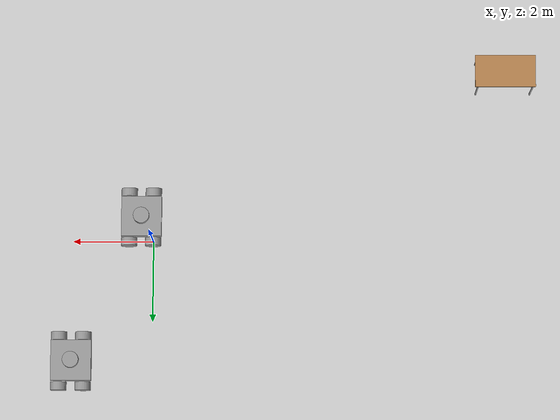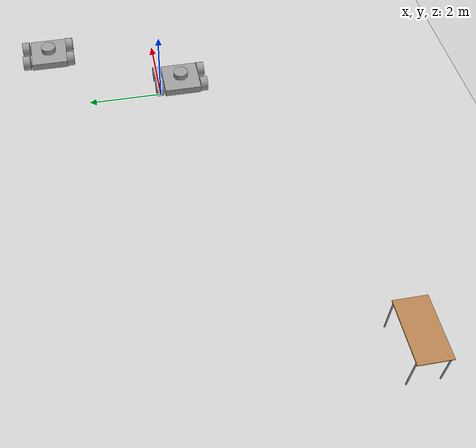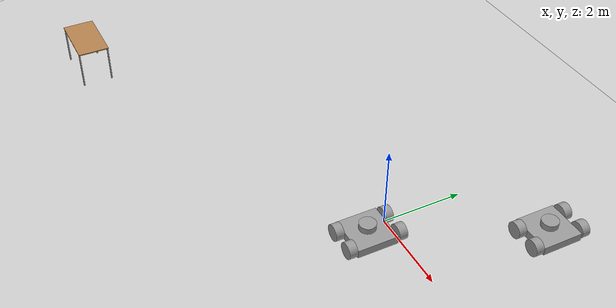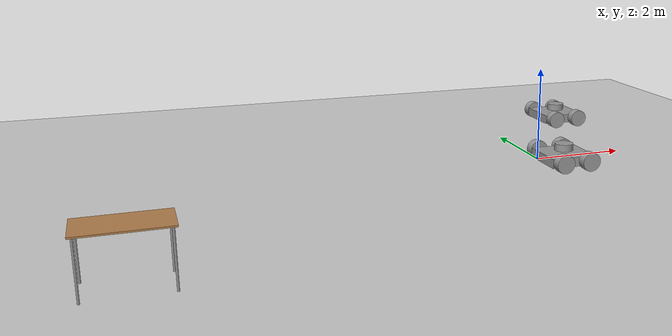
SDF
<sdf version="1.6">
 <world name="default">
  <model name="ground_plane">
   <static>1</static>
   <link name="link">
    <collision name="collision">
     <geometry><plane><normal>0 0 1</normal><size>100 100</size></plane></geometry>
     <surface><friction><ode><mu>100</mu><mu2>50</mu2></ode></friction></surface>
    </collision>
    <visual name="visual">
     <cast_shadows>0</cast_shadows>
     <geometry><plane><normal>0 0 1</normal><size>100 100</size></plane></geometry>
     <material>
      <script><uri>file://media/materials/scripts/gazebo.material</uri><name>Gazebo/Grey</name></script>
     </material>
    </visual>
   </link>
  </model>
  <model name="table">
   <static>1</static>
   <link name="link">
    <collision name="surface">
     <pose>0 0 1 0 -0 0</pose>
     <geometry><box><size>1.5 0.8 0.03</size></box></geometry>
     <surface><friction><ode><mu>0.6</mu><mu2>0.6</mu2></ode></friction></surface>
    </collision>
    <visual name="visual1">
     <pose>0 0 1 0 -0 0</pose>
     <geometry><box><size>1.5 0.8 0.03</size></box></geometry>
     <material>
      <script><uri>file://media/materials/scripts/gazebo.material</uri><name>Gazebo/Wood</name></script>
     </material>
    </visual>
    <collision name="front_left_leg">
     <pose>0.68 0.38 0.5 0 -0 0</pose>
     <geometry><cylinder><radius>0.02</radius><length>1</length></cylinder></geometry>
    </collision>
    <visual name="front_left_leg">
     <pose>0.68 0.38 0.5 0 -0 0</pose>
     <geometry><cylinder><radius>0.02</radius><length>1</length></cylinder></geometry>
     <material>
      <script><uri>file://media/materials/scripts/gazebo.material</uri><name>Gazebo/Grey</name></script>
     </material>
    </visual>
    <collision name="front_right_leg">
     <pose>0.68 -0.38 0.5 0 -0 0</pose>
     <geometry><cylinder><radius>0.02</radius><length>1</length></cylinder></geometry>
    </collision>
    <visual name="front_right_leg">
     <pose>0.68 -0.38 0.5 0 -0 0</pose>
     <geometry><cylinder><radius>0.02</radius><length>1</length></cylinder></geometry>
     <material>
      <script><uri>file://media/materials/scripts/gazebo.material</uri><name>Gazebo/Grey</name></script>
     </material>
    </visual>
    <collision name="back_right_leg">
     <pose>-0.68 -0.38 0.5 0 -0 0</pose>
     <geometry><cylinder><radius>0.02</radius><length>1</length></cylinder></geometry>
    </collision>
    <visual name="back_right_leg">
     <pose>-0.68 -0.38 0.5 0 -0 0</pose>
     <geometry><cylinder><radius>0.02</radius><length>1</length></cylinder></geometry>
     <material>
      <script><uri>file://media/materials/scripts/gazebo.material</uri><name>Gazebo/Grey</name></script>
     </material>
    </visual>
    <collision name="back_left_leg">
     <pose>-0.68 0.38 0.5 0 -0 0</pose>
     <geometry><cylinder><radius>0.02</radius><length>1</length></cylinder></geometry>
    </collision>
    <visual name="back_left_leg">
     <pose>-0.68 0.38 0.5 0 -0 0</pose>
     <geometry><cylinder><radius>0.02</radius><length>1</length></cylinder></geometry>
     <material>
      <script><uri>file://media/materials/scripts/gazebo.material</uri><name>Gazebo/Grey</name></script>
     </material>
    </visual>
   </link>
   <pose>-8.74208 -4.16902 0 0 -0 0</pose>
  </model>
  <model name="Recon">
   <link name="link_0">
    <pose>0 -0.013386 -0.049161 0 -0 0</pose>
    <inertial>
     <mass>1</mass>
     <inertia>
      <ixx>0.166667</ixx>
      <ixy>0</ixy>
      <ixz>0</ixz>
      <iyy>0.166667</iyy>
      <iyz>0</iyz>
      <izz>0.166667</izz>
     </inertia>
    </inertial>
    <visual name="visual">
     <geometry><box><size>1 1 0.2</size></box></geometry>
     <material>
      <lighting>1</lighting>
      <script><uri>file://media/materials/scripts/gazebo.material</uri><name>Gazebo/Grey</name></script>
      <ambient>0.3 0.3 0.3 1</ambient>
      <diffuse>0.7 0.7 0.7 1</diffuse>
      <specular>0.01 0.01 0.01 1</specular>
      <emissive>0 0 0 1</emissive>
      <shader type="vertex"><normal_map>__default__</normal_map></shader>
     </material>
    </visual>
    <collision name="collision">
     <geometry><box><size>1 1 0.2</size></box></geometry>
     <surface>
      <friction>
       <ode><mu>1</mu><mu2>1</mu2><fdir1>0 0 0</fdir1><slip1>0</slip1><slip2>0</slip2></ode>
       <torsional>
        <coefficient>1</coefficient>
        <patch_radius>0</patch_radius>
        <surface_radius>0</surface_radius>
        <use_patch_radius>1</use_patch_radius>
        <ode><slip>0</slip></ode>
       </torsional>
      </friction>
      <bounce><restitution_coefficient>0</restitution_coefficient><threshold>1e+06</threshold></bounce>
      <contact>
       <collide_without_contact>0</collide_without_contact>
       <collide_without_contact_bitmask>1</collide_without_contact_bitmask>
       <collide_bitmask>1</collide_bitmask>
       <ode>
        <soft_cfm>0</soft_cfm>
        <soft_erp>0.2</soft_erp>
        <kp>1e+13</kp>
        <kd>1</kd>
        <max_vel>0.01</max_vel>
        <min_depth>0</min_depth>
       </ode>
       <bullet>
        <split_impulse>1</split_impulse>
        <split_impulse_penetration_threshold>-0.01</split_impulse_penetration_threshold>
        <soft_cfm>0</soft_cfm>
        <soft_erp>0.2</soft_erp>
        <kp>1e+13</kp>
        <kd>1</kd>
       </bullet>
      </contact>
     </surface>
    </collision>
   </link>
   <link name="link_1">
    <pose>-0.3 0.626773 -0.029177 1.57 -0 0</pose>
    <inertial>
     <mass>1</mass>
     <inertia><ixx>0.145833</ixx><ixy>0</ixy><ixz>0</ixz><iyy>0.145833</iyy><iyz>0</iyz><izz>0.125</izz></inertia>
    </inertial>
    <visual name="visual">
     <geometry><cylinder><radius>0.2</radius><length>0.2</length></cylinder></geometry>
     <material>
      <lighting>1</lighting>
      <script><uri>file://media/materials/scripts/gazebo.material</uri><name>Gazebo/Grey</name></script>
      <ambient>0.3 0.3 0.3 1</ambient>
      <diffuse>0.7 0.7 0.7 1</diffuse>
      <specular>0.01 0.01 0.01 1</specular>
      <emissive>0 0 0 1</emissive>
      <shader type="vertex"><normal_map>__default__</normal_map></shader>
     </material>
    </visual>
    <collision name="collision">
     <geometry><cylinder><radius>0.2</radius><length>0.2</length></cylinder></geometry>
     <surface>
      <friction>
       <ode><mu>1</mu><mu2>1</mu2><fdir1>0 0 0</fdir1><slip1>0</slip1><slip2>0</slip2></ode>
       <torsional>
        <coefficient>1</coefficient>
        <patch_radius>0</patch_radius>
        <surface_radius>0</surface_radius>
        <use_patch_radius>1</use_patch_radius>
        <ode><slip>0</slip></ode>
       </torsional>
      </friction>
      <bounce><restitution_coefficient>0</restitution_coefficient><threshold>1e+06</threshold></bounce>
      <contact>
       <collide_without_contact>0</collide_without_contact>
       <collide_without_contact_bitmask>1</collide_without_contact_bitmask>
       <collide_bitmask>1</collide_bitmask>
       <ode>
        <soft_cfm>0</soft_cfm>
        <soft_erp>0.2</soft_erp>
        <kp>1e+13</kp>
        <kd>1</kd>
        <max_vel>0.01</max_vel>
        <min_depth>0</min_depth>
       </ode>
       <bullet>
        <split_impulse>1</split_impulse>
        <split_impulse_penetration_threshold>-0.01</split_impulse_penetration_threshold>
        <soft_cfm>0</soft_cfm>
        <soft_erp>0.2</soft_erp>
        <kp>1e+13</kp>
        <kd>1</kd>
       </bullet>
      </contact>
     </surface>
    </collision>
   </link>
   <link name="link_2">
    <pose>0.3 0.626773 -0.029177 1.57 -0 0</pose>
    <inertial>
     <mass>1</mass>
     <inertia><ixx>0.145833</ixx><ixy>0</ixy><ixz>0</ixz><iyy>0.145833</iyy><iyz>0</iyz><izz>0.125</izz></inertia>
    </inertial>
    <visual name="visual">
     <geometry><cylinder><radius>0.2</radius><length>0.2</length></cylinder></geometry>
     <material>
      <lighting>1</lighting>
      <script><uri>file://media/materials/scripts/gazebo.material</uri><name>Gazebo/Grey</name></script>
      <ambient>0.3 0.3 0.3 1</ambient>
      <diffuse>0.7 0.7 0.7 1</diffuse>
      <specular>0.01 0.01 0.01 1</specular>
      <emissive>0 0 0 1</emissive>
      <shader type="vertex"><normal_map>__default__</normal_map></shader>
     </material>
    </visual>
    <collision name="collision">
     <geometry><cylinder><radius>0.2</radius><length>0.2</length></cylinder></geometry>
     <surface>
      <friction>
       <ode><mu>1</mu><mu2>1</mu2><fdir1>0 0 0</fdir1><slip1>0</slip1><slip2>0</slip2></ode>
       <torsional>
        <coefficient>1</coefficient>
        <patch_radius>0</patch_radius>
        <surface_radius>0</surface_radius>
        <use_patch_radius>1</use_patch_radius>
        <ode><slip>0</slip></ode>
       </torsional>
      </friction>
      <bounce><restitution_coefficient>0</restitution_coefficient><threshold>1e+06</threshold></bounce>
      <contact>
       <collide_without_contact>0</collide_without_contact>
       <collide_without_contact_bitmask>1</collide_without_contact_bitmask>
       <collide_bitmask>1</collide_bitmask>
       <ode>
        <soft_cfm>0</soft_cfm>
        <soft_erp>0.2</soft_erp>
        <kp>1e+13</kp>
        <kd>1</kd>
        <max_vel>0.01</max_vel>
        <min_depth>0</min_depth>
       </ode>
       <bullet>
        <split_impulse>1</split_impulse>
        <split_impulse_penetration_threshold>-0.01</split_impulse_penetration_threshold>
        <soft_cfm>0</soft_cfm>
        <soft_erp>0.2</soft_erp>
        <kp>1e+13</kp>
        <kd>1</kd>
       </bullet>
      </contact>
     </surface>
    </collision>
   </link>
   <link name="link_3">
    <pose>-0.3 -0.613387 -0.029161 1.5708 -0 0</pose>
    <inertial>
     <mass>1</mass>
     <inertia><ixx>0.145833</ixx><ixy>0</ixy><ixz>0</ixz><iyy>0.145833</iyy><iyz>0</iyz><izz>0.125</izz></inertia>
     <pose>-0.02 0 0 0 -0 0</pose>
    </inertial>
    <visual name="visual">
     <geometry><cylinder><radius>0.2</radius><length>0.2</length></cylinder></geometry>
     <material>
      <lighting>1</lighting>
      <script><uri>file://media/materials/scripts/gazebo.material</uri><name>Gazebo/Grey</name></script>
      <ambient>0.3 0.3 0.3 1</ambient>
      <diffuse>0.7 0.7 0.7 1</diffuse>
      <specular>0.01 0.01 0.01 1</specular>
      <emissive>0 0 0 1</emissive>
      <shader type="vertex"><normal_map>__default__</normal_map></shader>
     </material>
    </visual>
    <collision name="collision">
     <geometry><cylinder><radius>0.2</radius><length>0.2</length></cylinder></geometry>
     <surface>
      <friction>
       <ode><mu>1</mu><mu2>1</mu2><fdir1>0 0 0</fdir1><slip1>0</slip1><slip2>0</slip2></ode>
       <torsional>
        <coefficient>1</coefficient>
        <patch_radius>0</patch_radius>
        <surface_radius>0</surface_radius>
        <use_patch_radius>1</use_patch_radius>
        <ode><slip>0</slip></ode>
       </torsional>
      </friction>
      <bounce><restitution_coefficient>0</restitution_coefficient><threshold>1e+06</threshold></bounce>
      <contact>
       <collide_without_contact>0</collide_without_contact>
       <collide_without_contact_bitmask>1</collide_without_contact_bitmask>
       <collide_bitmask>1</collide_bitmask>
       <ode>
        <soft_cfm>0</soft_cfm>
        <soft_erp>0.2</soft_erp>
        <kp>1e+13</kp>
        <kd>1</kd>
        <max_vel>0.01</max_vel>
        <min_depth>0</min_depth>
       </ode>
       <bullet>
        <split_impulse>1</split_impulse>
        <split_impulse_penetration_threshold>-0.01</split_impulse_penetration_threshold>
        <soft_cfm>0</soft_cfm>
        <soft_erp>0.2</soft_erp>
        <kp>1e+13</kp>
        <kd>1</kd>
       </bullet>
      </contact>
     </surface>
    </collision>
   </link>
   <link name="link_4">
    <pose>0.3 -0.613387 -0.029161 1.5708 -0 0</pose>
    <inertial>
     <mass>1</mass>
     <inertia><ixx>0.145833</ixx><ixy>0</ixy><ixz>0</ixz><iyy>0.145833</iyy><iyz>0</iyz><izz>0.125</izz></inertia>
    </inertial>
    <visual name="visual">
     <geometry><cylinder><radius>0.2</radius><length>0.2</length></cylinder></geometry>
     <material>
      <lighting>1</lighting>
      <script><uri>file://media/materials/scripts/gazebo.material</uri><name>Gazebo/Grey</name></script>
      <ambient>0.3 0.3 0.3 1</ambient>
      <diffuse>0.7 0.7 0.7 1</diffuse>
      <specular>0.01 0.01 0.01 1</specular>
      <emissive>0 0 0 1</emissive>
      <shader type="vertex"><normal_map>__default__</normal_map></shader>
     </material>
    </visual>
    <collision name="collision">
     <geometry><cylinder><radius>0.2</radius><length>0.2</length></cylinder></geometry>
     <surface>
      <friction>
       <ode><mu>1</mu><mu2>1</mu2><fdir1>0 0 0</fdir1><slip1>0</slip1><slip2>0</slip2></ode>
       <torsional>
        <coefficient>1</coefficient>
        <patch_radius>0</patch_radius>
        <surface_radius>0</surface_radius>
        <use_patch_radius>1</use_patch_radius>
        <ode><slip>0</slip></ode>
       </torsional>
      </friction>
      <bounce><restitution_coefficient>0</restitution_coefficient><threshold>1e+06</threshold></bounce>
      <contact>
       <collide_without_contact>0</collide_without_contact>
       <collide_without_contact_bitmask>1</collide_without_contact_bitmask>
       <collide_bitmask>1</collide_bitmask>
       <ode>
        <soft_cfm>0</soft_cfm>
        <soft_erp>0.2</soft_erp>
        <kp>1e+13</kp>
        <kd>1</kd>
        <max_vel>0.01</max_vel>
        <min_depth>0</min_depth>
       </ode>
       <bullet>
        <split_impulse>1</split_impulse>
        <split_impulse_penetration_threshold>-0.01</split_impulse_penetration_threshold>
        <soft_cfm>0</soft_cfm>
        <soft_erp>0.2</soft_erp>
        <kp>1e+13</kp>
        <kd>1</kd>
       </bullet>
      </contact>
     </surface>
    </collision>
   </link>
   <link name="link_5">
    <pose>0 -0.013386 0.165839 0 -0 0</pose>
    <inertial>
     <mass>1</mass>
     <inertia><ixx>0.145833</ixx><ixy>0</ixy><ixz>0</ixz><iyy>0.145833</iyy><iyz>0</iyz><izz>0.125</izz></inertia>
    </inertial>
    <visual name="visual">
     <geometry><cylinder><radius>0.2</radius><length>0.15</length></cylinder></geometry>
     <material>
      <lighting>1</lighting>
      <script><uri>file://media/materials/scripts/gazebo.material</uri><name>Gazebo/Grey</name></script>
      <ambient>0.3 0.3 0.3 1</ambient>
      <diffuse>0.7 0.7 0.7 1</diffuse>
      <specular>0.01 0.01 0.01 1</specular>
      <emissive>0 0 0 1</emissive>
      <shader type="vertex"><normal_map>__default__</normal_map></shader>
     </material>
    </visual>
    <collision name="collision">
     <geometry><cylinder><radius>0.2</radius><length>0.15</length></cylinder></geometry>
     <surface>
      <friction>
       <ode><mu>1</mu><mu2>1</mu2><fdir1>0 0 0</fdir1><slip1>0</slip1><slip2>0</slip2></ode>
       <torsional>
        <coefficient>1</coefficient>
        <patch_radius>0</patch_radius>
        <surface_radius>0</surface_radius>
        <use_patch_radius>1</use_patch_radius>
        <ode><slip>0</slip></ode>
       </torsional>
      </friction>
      <bounce><restitution_coefficient>0</restitution_coefficient><threshold>1e+06</threshold></bounce>
      <contact>
       <collide_without_contact>0</collide_without_contact>
       <collide_without_contact_bitmask>1</collide_without_contact_bitmask>
       <collide_bitmask>1</collide_bitmask>
       <ode>
        <soft_cfm>0</soft_cfm>
        <soft_erp>0.2</soft_erp>
        <kp>1e+13</kp>
        <kd>1</kd>
        <max_vel>0.01</max_vel>
        <min_depth>0</min_depth>
       </ode>
       <bullet>
        <split_impulse>1</split_impulse>
        <split_impulse_penetration_threshold>-0.01</split_impulse_penetration_threshold>
        <soft_cfm>0</soft_cfm>
        <soft_erp>0.2</soft_erp>
        <kp>1e+13</kp>
        <kd>1</kd>
       </bullet>
      </contact>
     </surface>
    </collision>
   </link>
   <joint name="link_0_JOINT_2" type="revolute">
    <parent>link_0</parent>
    <child>link_4</child>
    <axis>
     <xyz>1 0 0</xyz>
     <use_parent_model_frame>0</use_parent_model_frame>
     <limit>
      <lower>-1.79769e+308</lower>
      <upper>1.79769e+308</upper>
      <effort>-1</effort>
      <velocity>-1</velocity>
     </limit>
     <dynamics>
      <spring_reference>0</spring_reference>
      <spring_stiffness>0</spring_stiffness>
      <damping>0</damping>
     </dynamics>
    </axis>
    <physics>
     <ode><limit><cfm>0</cfm><erp>0.2</erp></limit><suspension><cfm>0</cfm><erp>0.2</erp></suspension></ode>
    </physics>
   </joint>
   <joint name="link_0_JOINT_3" type="revolute">
    <parent>link_0</parent>
    <child>link_3</child>
    <axis>
     <xyz>1 0 0</xyz>
     <use_parent_model_frame>0</use_parent_model_frame>
     <limit>
      <lower>-1.79769e+308</lower>
      <upper>1.79769e+308</upper>
      <effort>-1</effort>
      <velocity>-1</velocity>
     </limit>
     <dynamics>
      <spring_reference>0</spring_reference>
      <spring_stiffness>0</spring_stiffness>
      <damping>0</damping>
     </dynamics>
    </axis>
    <physics>
     <ode><limit><cfm>0</cfm><erp>0.2</erp></limit><suspension><cfm>0</cfm><erp>0.2</erp></suspension></ode>
    </physics>
   </joint>
   <joint name="link_0_JOINT_4" type="revolute">
    <parent>link_0</parent>
    <child>link_1</child>
    <axis>
     <xyz>1 0 0</xyz>
     <use_parent_model_frame>0</use_parent_model_frame>
     <limit>
      <lower>-1.79769e+308</lower>
      <upper>1.79769e+308</upper>
      <effort>-1</effort>
      <velocity>-1</velocity>
     </limit>
     <dynamics>
      <spring_reference>0</spring_reference>
      <spring_stiffness>0</spring_stiffness>
      <damping>0</damping>
     </dynamics>
    </axis>
    <physics>
     <ode><limit><cfm>0</cfm><erp>0.2</erp></limit><suspension><cfm>0</cfm><erp>0.2</erp></suspension></ode>
    </physics>
   </joint>
   <joint name="link_0_JOINT_5" type="revolute">
    <parent>link_0</parent>
    <child>link_2</child>
    <axis>
     <xyz>1 0 0</xyz>
     <use_parent_model_frame>0</use_parent_model_frame>
     <limit>
      <lower>-1.79769e+308</lower>
      <upper>1.79769e+308</upper>
      <effort>-1</effort>
      <velocity>-1</velocity>
     </limit>
     <dynamics>
      <spring_reference>0</spring_reference>
      <spring_stiffness>0</spring_stiffness>
      <damping>0</damping>
     </dynamics>
    </axis>
    <physics>
     <ode><limit><cfm>0</cfm><erp>0.2</erp></limit><suspension><cfm>0</cfm><erp>0.2</erp></suspension></ode>
    </physics>
   </joint>
   <joint name="link_0_JOINT_6" type="revolute">
    <parent>link_0</parent>
    <child>link_5</child>
    <axis>
     <xyz>1 0 0</xyz>
     <use_parent_model_frame>0</use_parent_model_frame>
     <limit>
      <lower>-1.79769e+308</lower>
      <upper>1.79769e+308</upper>
      <effort>-1</effort>
      <velocity>-1</velocity>
     </limit>
     <dynamics>
      <spring_reference>0</spring_reference>
      <spring_stiffness>0</spring_stiffness>
      <damping>0</damping>
     </dynamics>
    </axis>
    <physics>
     <ode><limit><cfm>0</cfm><erp>0.2</erp></limit><suspension><cfm>0</cfm><erp>0.2</erp></suspension></ode>
    </physics>
   </joint>
   <static>0</static>
   <pose>0.3 -0.6 0.25 0 -0 0</pose>
  </model>
  <model name="Recon_0">
   <link name="link_0">
    <pose>0 -0.013386 -0.049161 0 -0 0</pose>
    <inertial>
     <mass>1</mass>
     <inertia>
      <ixx>0.166667</ixx>
      <ixy>0</ixy>
      <ixz>0</ixz>
      <iyy>0.166667</iyy>
      <iyz>0</iyz>
      <izz>0.166667</izz>
     </inertia>
    </inertial>
    <visual name="visual">
     <geometry><box><size>1 1 0.2</size></box></geometry>
     <material>
      <lighting>1</lighting>
      <script><uri>file://media/materials/scripts/gazebo.material</uri><name>Gazebo/Grey</name></script>
      <ambient>0.3 0.3 0.3 1</ambient>
      <diffuse>0.7 0.7 0.7 1</diffuse>
      <specular>0.01 0.01 0.01 1</specular>
      <emissive>0 0 0 1</emissive>
      <shader type="vertex"><normal_map>__default__</normal_map></shader>
     </material>
    </visual>
    <collision name="collision">
     <geometry><box><size>1 1 0.2</size></box></geometry>
     <surface>
      <friction>
       <ode><mu>1</mu><mu2>1</mu2><fdir1>0 0 0</fdir1><slip1>0</slip1><slip2>0</slip2></ode>
       <torsional>
        <coefficient>1</coefficient>
        <patch_radius>0</patch_radius>
        <surface_radius>0</surface_radius>
        <use_patch_radius>1</use_patch_radius>
        <ode><slip>0</slip></ode>
       </torsional>
      </friction>
      <bounce><restitution_coefficient>0</restitution_coefficient><threshold>1e+06</threshold></bounce>
      <contact>
       <collide_without_contact>0</collide_without_contact>
       <collide_without_contact_bitmask>1</collide_without_contact_bitmask>
       <collide_bitmask>1</collide_bitmask>
       <ode>
        <soft_cfm>0</soft_cfm>
        <soft_erp>0.2</soft_erp>
        <kp>1e+13</kp>
        <kd>1</kd>
        <max_vel>0.01</max_vel>
        <min_depth>0</min_depth>
       </ode>
       <bullet>
        <split_impulse>1</split_impulse>
        <split_impulse_penetration_threshold>-0.01</split_impulse_penetration_threshold>
        <soft_cfm>0</soft_cfm>
        <soft_erp>0.2</soft_erp>
        <kp>1e+13</kp>
        <kd>1</kd>
       </bullet>
      </contact>
     </surface>
    </collision>
   </link>
   <link name="link_1">
    <pose>-0.3 0.626773 -0.029177 1.57 -0 0</pose>
    <inertial>
     <mass>1</mass>
     <inertia><ixx>0.145833</ixx><ixy>0</ixy><ixz>0</ixz><iyy>0.145833</iyy><iyz>0</iyz><izz>0.125</izz></inertia>
    </inertial>
    <visual name="visual">
     <geometry><cylinder><radius>0.2</radius><length>0.2</length></cylinder></geometry>
     <material>
      <lighting>1</lighting>
      <script><uri>file://media/materials/scripts/gazebo.material</uri><name>Gazebo/Grey</name></script>
      <ambient>0.3 0.3 0.3 1</ambient>
      <diffuse>0.7 0.7 0.7 1</diffuse>
      <specular>0.01 0.01 0.01 1</specular>
      <emissive>0 0 0 1</emissive>
      <shader type="vertex"><normal_map>__default__</normal_map></shader>
     </material>
    </visual>
    <collision name="collision">
     <geometry><cylinder><radius>0.2</radius><length>0.2</length></cylinder></geometry>
     <surface>
      <friction>
       <ode><mu>1</mu><mu2>1</mu2><fdir1>0 0 0</fdir1><slip1>0</slip1><slip2>0</slip2></ode>
       <torsional>
        <coefficient>1</coefficient>
        <patch_radius>0</patch_radius>
        <surface_radius>0</surface_radius>
        <use_patch_radius>1</use_patch_radius>
        <ode><slip>0</slip></ode>
       </torsional>
      </friction>
      <bounce><restitution_coefficient>0</restitution_coefficient><threshold>1e+06</threshold></bounce>
      <contact>
       <collide_without_contact>0</collide_without_contact>
       <collide_without_contact_bitmask>1</collide_without_contact_bitmask>
       <collide_bitmask>1</collide_bitmask>
       <ode>
        <soft_cfm>0</soft_cfm>
        <soft_erp>0.2</soft_erp>
        <kp>1e+13</kp>
        <kd>1</kd>
        <max_vel>0.01</max_vel>
        <min_depth>0</min_depth>
       </ode>
       <bullet>
        <split_impulse>1</split_impulse>
        <split_impulse_penetration_threshold>-0.01</split_impulse_penetration_threshold>
        <soft_cfm>0</soft_cfm>
        <soft_erp>0.2</soft_erp>
        <kp>1e+13</kp>
        <kd>1</kd>
       </bullet>
      </contact>
     </surface>
    </collision>
   </link>
   <link name="link_2">
    <pose>0.3 0.626773 -0.029177 1.57 -0 0</pose>
    <inertial>
     <mass>1</mass>
     <inertia><ixx>0.145833</ixx><ixy>0</ixy><ixz>0</ixz><iyy>0.145833</iyy><iyz>0</iyz><izz>0.125</izz></inertia>
    </inertial>
    <visual name="visual">
     <geometry><cylinder><radius>0.2</radius><length>0.2</length></cylinder></geometry>
     <material>
      <lighting>1</lighting>
      <script><uri>file://media/materials/scripts/gazebo.material</uri><name>Gazebo/Grey</name></script>
      <ambient>0.3 0.3 0.3 1</ambient>
      <diffuse>0.7 0.7 0.7 1</diffuse>
      <specular>0.01 0.01 0.01 1</specular>
      <emissive>0 0 0 1</emissive>
      <shader type="vertex"><normal_map>__default__</normal_map></shader>
     </material>
    </visual>
    <collision name="collision">
     <geometry><cylinder><radius>0.2</radius><length>0.2</length></cylinder></geometry>
     <surface>
      <friction>
       <ode><mu>1</mu><mu2>1</mu2><fdir1>0 0 0</fdir1><slip1>0</slip1><slip2>0</slip2></ode>
       <torsional>
        <coefficient>1</coefficient>
        <patch_radius>0</patch_radius>
        <surface_radius>0</surface_radius>
        <use_patch_radius>1</use_patch_radius>
        <ode><slip>0</slip></ode>
       </torsional>
      </friction>
      <bounce><restitution_coefficient>0</restitution_coefficient><threshold>1e+06</threshold></bounce>
      <contact>
       <collide_without_contact>0</collide_without_contact>
       <collide_without_contact_bitmask>1</collide_without_contact_bitmask>
       <collide_bitmask>1</collide_bitmask>
       <ode>
        <soft_cfm>0</soft_cfm>
        <soft_erp>0.2</soft_erp>
        <kp>1e+13</kp>
        <kd>1</kd>
        <max_vel>0.01</max_vel>
        <min_depth>0</min_depth>
       </ode>
       <bullet>
        <split_impulse>1</split_impulse>
        <split_impulse_penetration_threshold>-0.01</split_impulse_penetration_threshold>
        <soft_cfm>0</soft_cfm>
        <soft_erp>0.2</soft_erp>
        <kp>1e+13</kp>
        <kd>1</kd>
       </bullet>
      </contact>
     </surface>
    </collision>
   </link>
   <link name="link_3">
    <pose>-0.3 -0.613387 -0.029161 1.5708 -0 0</pose>
    <inertial>
     <mass>1</mass>
     <inertia><ixx>0.145833</ixx><ixy>0</ixy><ixz>0</ixz><iyy>0.145833</iyy><iyz>0</iyz><izz>0.125</izz></inertia>
     <pose>-0.02 0 0 0 -0 0</pose>
    </inertial>
    <visual name="visual">
     <geometry><cylinder><radius>0.2</radius><length>0.2</length></cylinder></geometry>
     <material>
      <lighting>1</lighting>
      <script><uri>file://media/materials/scripts/gazebo.material</uri><name>Gazebo/Grey</name></script>
      <ambient>0.3 0.3 0.3 1</ambient>
      <diffuse>0.7 0.7 0.7 1</diffuse>
      <specular>0.01 0.01 0.01 1</specular>
      <emissive>0 0 0 1</emissive>
      <shader type="vertex"><normal_map>__default__</normal_map></shader>
     </material>
    </visual>
    <collision name="collision">
     <geometry><cylinder><radius>0.2</radius><length>0.2</length></cylinder></geometry>
     <surface>
      <friction>
       <ode><mu>1</mu><mu2>1</mu2><fdir1>0 0 0</fdir1><slip1>0</slip1><slip2>0</slip2></ode>
       <torsional>
        <coefficient>1</coefficient>
        <patch_radius>0</patch_radius>
        <surface_radius>0</surface_radius>
        <use_patch_radius>1</use_patch_radius>
        <ode><slip>0</slip></ode>
       </torsional>
      </friction>
      <bounce><restitution_coefficient>0</restitution_coefficient><threshold>1e+06</threshold></bounce>
      <contact>
       <collide_without_contact>0</collide_without_contact>
       <collide_without_contact_bitmask>1</collide_without_contact_bitmask>
       <collide_bitmask>1</collide_bitmask>
       <ode>
        <soft_cfm>0</soft_cfm>
        <soft_erp>0.2</soft_erp>
        <kp>1e+13</kp>
        <kd>1</kd>
        <max_vel>0.01</max_vel>
        <min_depth>0</min_depth>
       </ode>
       <bullet>
        <split_impulse>1</split_impulse>
        <split_impulse_penetration_threshold>-0.01</split_impulse_penetration_threshold>
        <soft_cfm>0</soft_cfm>
        <soft_erp>0.2</soft_erp>
        <kp>1e+13</kp>
        <kd>1</kd>
       </bullet>
      </contact>
     </surface>
    </collision>
   </link>
   <link name="link_4">
    <pose>0.3 -0.613387 -0.029161 1.5708 -0 0</pose>
    <inertial>
     <mass>1</mass>
     <inertia><ixx>0.145833</ixx><ixy>0</ixy><ixz>0</ixz><iyy>0.145833</iyy><iyz>0</iyz><izz>0.125</izz></inertia>
    </inertial>
    <visual name="visual">
     <geometry><cylinder><radius>0.2</radius><length>0.2</length></cylinder></geometry>
     <material>
      <lighting>1</lighting>
      <script><uri>file://media/materials/scripts/gazebo.material</uri><name>Gazebo/Grey</name></script>
      <ambient>0.3 0.3 0.3 1</ambient>
      <diffuse>0.7 0.7 0.7 1</diffuse>
      <specular>0.01 0.01 0.01 1</specular>
      <emissive>0 0 0 1</emissive>
      <shader type="vertex"><normal_map>__default__</normal_map></shader>
     </material>
    </visual>
    <collision name="collision">
     <geometry><cylinder><radius>0.2</radius><length>0.2</length></cylinder></geometry>
     <surface>
      <friction>
       <ode><mu>1</mu><mu2>1</mu2><fdir1>0 0 0</fdir1><slip1>0</slip1><slip2>0</slip2></ode>
       <torsional>
        <coefficient>1</coefficient>
        <patch_radius>0</patch_radius>
        <surface_radius>0</surface_radius>
        <use_patch_radius>1</use_patch_radius>
        <ode><slip>0</slip></ode>
       </torsional>
      </friction>
      <bounce><restitution_coefficient>0</restitution_coefficient><threshold>1e+06</threshold></bounce>
      <contact>
       <collide_without_contact>0</collide_without_contact>
       <collide_without_contact_bitmask>1</collide_without_contact_bitmask>
       <collide_bitmask>1</collide_bitmask>
       <ode>
        <soft_cfm>0</soft_cfm>
        <soft_erp>0.2</soft_erp>
        <kp>1e+13</kp>
        <kd>1</kd>
        <max_vel>0.01</max_vel>
        <min_depth>0</min_depth>
       </ode>
       <bullet>
        <split_impulse>1</split_impulse>
        <split_impulse_penetration_threshold>-0.01</split_impulse_penetration_threshold>
        <soft_cfm>0</soft_cfm>
        <soft_erp>0.2</soft_erp>
        <kp>1e+13</kp>
        <kd>1</kd>
       </bullet>
      </contact>
     </surface>
    </collision>
   </link>
   <link name="link_5">
    <pose>0 -0.013386 0.165839 0 -0 0</pose>
    <inertial>
     <mass>1</mass>
     <inertia><ixx>0.145833</ixx><ixy>0</ixy><ixz>0</ixz><iyy>0.145833</iyy><iyz>0</iyz><izz>0.125</izz></inertia>
    </inertial>
    <visual name="visual">
     <geometry><cylinder><radius>0.2</radius><length>0.15</length></cylinder></geometry>
     <material>
      <lighting>1</lighting>
      <script><uri>file://media/materials/scripts/gazebo.material</uri><name>Gazebo/Grey</name></script>
      <ambient>0.3 0.3 0.3 1</ambient>
      <diffuse>0.7 0.7 0.7 1</diffuse>
      <specular>0.01 0.01 0.01 1</specular>
      <emissive>0 0 0 1</emissive>
      <shader type="vertex"><normal_map>__default__</normal_map></shader>
     </material>
    </visual>
    <collision name="collision">
     <geometry><cylinder><radius>0.2</radius><length>0.15</length></cylinder></geometry>
     <surface>
      <friction>
       <ode><mu>1</mu><mu2>1</mu2><fdir1>0 0 0</fdir1><slip1>0</slip1><slip2>0</slip2></ode>
       <torsional>
        <coefficient>1</coefficient>
        <patch_radius>0</patch_radius>
        <surface_radius>0</surface_radius>
        <use_patch_radius>1</use_patch_radius>
        <ode><slip>0</slip></ode>
       </torsional>
      </friction>
      <bounce><restitution_coefficient>0</restitution_coefficient><threshold>1e+06</threshold></bounce>
      <contact>
       <collide_without_contact>0</collide_without_contact>
       <collide_without_contact_bitmask>1</collide_without_contact_bitmask>
       <collide_bitmask>1</collide_bitmask>
       <ode>
        <soft_cfm>0</soft_cfm>
        <soft_erp>0.2</soft_erp>
        <kp>1e+13</kp>
        <kd>1</kd>
        <max_vel>0.01</max_vel>
        <min_depth>0</min_depth>
       </ode>
       <bullet>
        <split_impulse>1</split_impulse>
        <split_impulse_penetration_threshold>-0.01</split_impulse_penetration_threshold>
        <soft_cfm>0</soft_cfm>
        <soft_erp>0.2</soft_erp>
        <kp>1e+13</kp>
        <kd>1</kd>
       </bullet>
      </contact>
     </surface>
    </collision>
   </link>
   <joint name="link_0_JOINT_2" type="revolute">
    <parent>link_0</parent>
    <child>link_4</child>
    <axis>
     <xyz>1 0 0</xyz>
     <use_parent_model_frame>0</use_parent_model_frame>
     <limit>
      <lower>-1.79769e+308</lower>
      <upper>1.79769e+308</upper>
      <effort>-1</effort>
      <velocity>-1</velocity>
     </limit>
     <dynamics>
      <spring_reference>0</spring_reference>
      <spring_stiffness>0</spring_stiffness>
      <damping>0</damping>
     </dynamics>
    </axis>
    <physics>
     <ode><limit><cfm>0</cfm><erp>0.2</erp></limit><suspension><cfm>0</cfm><erp>0.2</erp></suspension></ode>
    </physics>
   </joint>
   <joint name="link_0_JOINT_3" type="revolute">
    <parent>link_0</parent>
    <child>link_3</child>
    <axis>
     <xyz>1 0 0</xyz>
     <use_parent_model_frame>0</use_parent_model_frame>
     <limit>
      <lower>-1.79769e+308</lower>
      <upper>1.79769e+308</upper>
      <effort>-1</effort>
      <velocity>-1</velocity>
     </limit>
     <dynamics>
      <spring_reference>0</spring_reference>
      <spring_stiffness>0</spring_stiffness>
      <damping>0</damping>
     </dynamics>
    </axis>
    <physics>
     <ode><limit><cfm>0</cfm><erp>0.2</erp></limit><suspension><cfm>0</cfm><erp>0.2</erp></suspension></ode>
    </physics>
   </joint>
   <joint name="link_0_JOINT_4" type="revolute">
    <parent>link_0</parent>
    <child>link_1</child>
    <axis>
     <xyz>1 0 0</xyz>
     <use_parent_model_frame>0</use_parent_model_frame>
     <limit>
      <lower>-1.79769e+308</lower>
      <upper>1.79769e+308</upper>
      <effort>-1</effort>
      <velocity>-1</velocity>
     </limit>
     <dynamics>
      <spring_reference>0</spring_reference>
      <spring_stiffness>0</spring_stiffness>
      <damping>0</damping>
     </dynamics>
    </axis>
    <physics>
     <ode><limit><cfm>0</cfm><erp>0.2</erp></limit><suspension><cfm>0</cfm><erp>0.2</erp></suspension></ode>
    </physics>
   </joint>
   <joint name="link_0_JOINT_5" type="revolute">
    <parent>link_0</parent>
    <child>link_2</child>
    <axis>
     <xyz>1 0 0</xyz>
     <use_parent_model_frame>0</use_parent_model_frame>
     <limit>
      <lower>-1.79769e+308</lower>
      <upper>1.79769e+308</upper>
      <effort>-1</effort>
      <velocity>-1</velocity>
     </limit>
     <dynamics>
      <spring_reference>0</spring_reference>
      <spring_stiffness>0</spring_stiffness>
      <damping>0</damping>
     </dynamics>
    </axis>
    <physics>
     <ode><limit><cfm>0</cfm><erp>0.2</erp></limit><suspension><cfm>0</cfm><erp>0.2</erp></suspension></ode>
    </physics>
   </joint>
   <joint name="link_0_JOINT_6" type="revolute">
    <parent>link_0</parent>
    <child>link_5</child>
    <axis>
     <xyz>1 0 0</xyz>
     <use_parent_model_frame>0</use_parent_model_frame>
     <limit>
      <lower>-1.79769e+308</lower>
      <upper>1.79769e+308</upper>
      <effort>-1</effort>
      <velocity>-1</velocity>
     </limit>
     <dynamics>
      <spring_reference>0</spring_reference>
      <spring_stiffness>0</spring_stiffness>
      <damping>0</damping>
     </dynamics>
    </axis>
    <physics>
     <ode><limit><cfm>0</cfm><erp>0.2</erp></limit><suspension><cfm>0</cfm><erp>0.2</erp></suspension></ode>
    </physics>
   </joint>
   <static>0</static>
   <pose>2 3 0.25 0 -0 0</pose>
  </model>
 </world>
</sdf>
